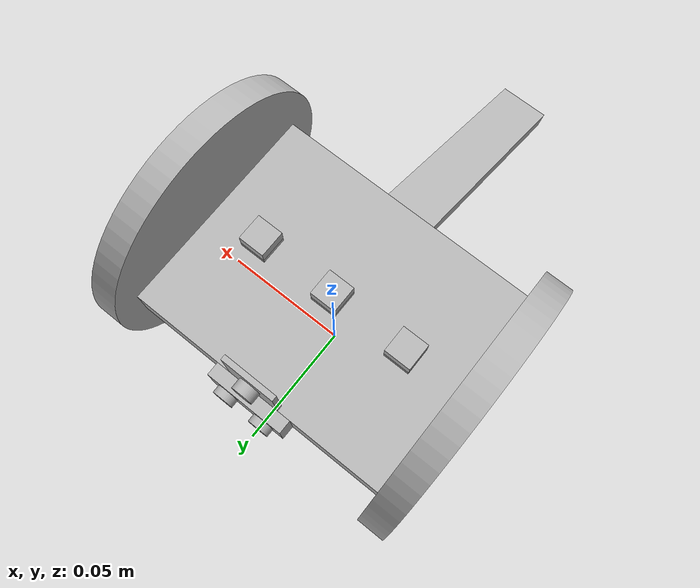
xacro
<?xml version="1.0" ?>
<robot name="cansat" xmlns:xacro="http://www.ros.org/wiki/xacro">

<xacro:include filename="$(find cansat_description)/urdf/materials.xacro" />
<xacro:include filename="$(find cansat_description)/urdf/cansat.trans" />
<xacro:include filename="$(find cansat_description)/urdf/cansat.gazebo" />
<link name="base_link">
  <inertial>
    <origin xyz="0.0 -3.2286327365022175e-08 0.05004228635760257" rpy="0 0 0"/>
    <mass value="0.9467113842824633"/>
    <inertia ixx="0.00052" iyy="0.000806" izz="0.00129" ixy="-0.0" iyz="-0.0" ixz="0.0"/>
  </inertial>
  <visual>
    <origin xyz="0 0 0" rpy="0 0 0"/>
    <geometry>
      <mesh filename="file://$(find cansat_description)/meshes/base_link.stl" scale="0.001 0.001 0.001"/>
    </geometry>
    <material name="silver"/>
  </visual>
  <collision>
    <origin xyz="0 0 0" rpy="0 0 0"/>
    <geometry>
      <mesh filename="file://$(find cansat_description)/meshes/base_link.stl" scale="0.001 0.001 0.001"/>
    </geometry>
  </collision>
</link>

<link name="wheel_right_1">
  <inertial>
    <origin xyz="0.0049999999999999975 -7.237528875152536e-18 -1.3877787807814457e-17" rpy="0 0 0"/>
    <mass value="0.6165375582669969"/>
    <inertia ixx="0.000771" iyy="0.00039" izz="0.00039" ixy="-0.0" iyz="-0.0" ixz="-0.0"/>
  </inertial>
  <visual>
    <origin xyz="-0.05 -0.0 -0.05" rpy="0 0 0"/>
    <geometry>
      <mesh filename="file://$(find cansat_description)/meshes/wheel_right_1.stl" scale="0.001 0.001 0.001"/>
    </geometry>
    <material name="silver"/>
  </visual>
  <collision>
    <origin xyz="-0.05 -0.0 -0.05" rpy="0 0 0"/>
    <geometry>
      <mesh filename="file://$(find cansat_description)/meshes/wheel_right_1.stl" scale="0.001 0.001 0.001"/>
    </geometry>
  </collision>
</link>

<link name="wheel_left_1">
  <inertial>
    <origin xyz="-0.0049999999999999975 -7.237528875152536e-18 -1.3877787807814457e-17" rpy="0 0 0"/>
    <mass value="0.6165375582669969"/>
    <inertia ixx="0.000771" iyy="0.00039" izz="0.00039" ixy="0.0" iyz="-0.0" ixz="0.0"/>
  </inertial>
  <visual>
    <origin xyz="0.05 -0.0 -0.05" rpy="0 0 0"/>
    <geometry>
      <mesh filename="file://$(find cansat_description)/meshes/wheel_left_1.stl" scale="0.001 0.001 0.001"/>
    </geometry>
    <material name="silver"/>
  </visual>
  <collision>
    <origin xyz="0.05 -0.0 -0.05" rpy="0 0 0"/>
    <geometry>
      <mesh filename="file://$(find cansat_description)/meshes/wheel_left_1.stl" scale="0.001 0.001 0.001"/>
    </geometry>
  </collision>
</link>

<link name="pressure_1">
  <inertial>
    <origin xyz="0.0 0.0 0.0025000000000000022" rpy="0 0 0"/>
    <mass value="0.003925"/>
    <inertia ixx="0.0" iyy="0.0" izz="0.0" ixy="0.0" iyz="0.0" ixz="0.0"/>
  </inertial>
  <visual>
    <origin xyz="0.03 -0.0 -0.0595" rpy="0 0 0"/>
    <geometry>
      <mesh filename="file://$(find cansat_description)/meshes/pressure_1.stl" scale="0.001 0.001 0.001"/>
    </geometry>
    <material name="silver"/>
  </visual>
  <collision>
    <origin xyz="0.03 -0.0 -0.0595" rpy="0 0 0"/>
    <geometry>
      <mesh filename="file://$(find cansat_description)/meshes/pressure_1.stl" scale="0.001 0.001 0.001"/>
    </geometry>
  </collision>
</link>

<link name="GPS_1">
  <inertial>
    <origin xyz="0.0 0.0 0.0025000000000000022" rpy="0 0 0"/>
    <mass value="0.003925"/>
    <inertia ixx="0.0" iyy="0.0" izz="0.0" ixy="0.0" iyz="0.0" ixz="0.0"/>
  </inertial>
  <visual>
    <origin xyz="-0.0 -0.0 -0.0595" rpy="0 0 0"/>
    <geometry>
      <mesh filename="file://$(find cansat_description)/meshes/GPS_1.stl" scale="0.001 0.001 0.001"/>
    </geometry>
    <material name="silver"/>
  </visual>
  <collision>
    <origin xyz="-0.0 -0.0 -0.0595" rpy="0 0 0"/>
    <geometry>
      <mesh filename="file://$(find cansat_description)/meshes/GPS_1.stl" scale="0.001 0.001 0.001"/>
    </geometry>
  </collision>
</link>

<link name="IMU_1">
  <inertial>
    <origin xyz="0.0 0.0 0.0025000000000000022" rpy="0 0 0"/>
    <mass value="0.003925"/>
    <inertia ixx="0.0" iyy="0.0" izz="0.0" ixy="0.0" iyz="0.0" ixz="-0.0"/>
  </inertial>
  <visual>
    <origin xyz="-0.03 -0.0 -0.0595" rpy="0 0 0"/>
    <geometry>
      <mesh filename="file://$(find cansat_description)/meshes/IMU_1.stl" scale="0.001 0.001 0.001"/>
    </geometry>
    <material name="silver"/>
  </visual>
  <collision>
    <origin xyz="-0.03 -0.0 -0.0595" rpy="0 0 0"/>
    <geometry>
      <mesh filename="file://$(find cansat_description)/meshes/IMU_1.stl" scale="0.001 0.001 0.001"/>
    </geometry>
  </collision>
</link>

<link name="camera_1">
  <inertial>
    <origin xyz="-8.401572995760484e-14 0.0006025459279945244 0.009999999999999995" rpy="0 0 0"/>
    <mass value="0.007858336149163586"/>
    <inertia ixx="0.0" iyy="0.0" izz="0.0" ixy="0.0" iyz="0.0" ixz="0.0"/>
  </inertial>
  <visual>
    <origin xyz="0.0 -0.039 -0.057501" rpy="0 0 0"/>
    <geometry>
      <mesh filename="file://$(find cansat_description)/meshes/camera_1.stl" scale="0.001 0.001 0.001"/>
    </geometry>
    <material name="silver"/>
  </visual>
  <collision>
    <origin xyz="0.0 -0.039 -0.057501" rpy="0 0 0"/>
    <geometry>
      <mesh filename="file://$(find cansat_description)/meshes/camera_1.stl" scale="0.001 0.001 0.001"/>
    </geometry>
  </collision>
</link>

<link name="ultrasound_1">
  <inertial>
    <origin xyz="-4.943717327231973e-14 0.002972791557565156 4.999999999935612e-07" rpy="0 0 0"/>
    <mass value="0.020030004223745363"/>
    <inertia ixx="0.0" iyy="2e-06" izz="2e-06" ixy="0.0" iyz="0.0" ixz="0.0"/>
  </inertial>
  <visual>
    <origin xyz="-0.0 -0.04 -0.05" rpy="0 0 0"/>
    <geometry>
      <mesh filename="file://$(find cansat_description)/meshes/ultrasound_1.stl" scale="0.001 0.001 0.001"/>
    </geometry>
    <material name="silver"/>
  </visual>
  <collision>
    <origin xyz="-0.0 -0.04 -0.05" rpy="0 0 0"/>
    <geometry>
      <mesh filename="file://$(find cansat_description)/meshes/ultrasound_1.stl" scale="0.001 0.001 0.001"/>
    </geometry>
  </collision>
</link>

<link name="tail_1">
  <inertial>
    <origin xyz="0.0 -0.04319351018119617 -0.021567352048070105" rpy="0 0 0"/>
    <mass value="0.09245084051642186"/>
    <inertia ixx="7.2e-05" iyy="1.8e-05" izz="6.1e-05" ixy="0.0" iyz="-2.9e-05" ixz="0.0"/>
  </inertial>
  <visual>
    <origin xyz="-0.0 0.040001 -0.045909" rpy="0 0 0"/>
    <geometry>
      <mesh filename="file://$(find cansat_description)/meshes/tail_1.stl" scale="0.001 0.001 0.001"/>
    </geometry>
    <material name="silver"/>
  </visual>
  <collision>
    <origin xyz="-0.0 0.040001 -0.045909" rpy="0 0 0"/>
    <geometry>
      <mesh filename="file://$(find cansat_description)/meshes/tail_1.stl" scale="0.001 0.001 0.001"/>
    </geometry>
  </collision>
</link>

<joint name="wheel_left_joint" type="continuous">
  <origin xyz="0.05 0.0 0.05" rpy="0 0 0"/>
  <parent link="base_link"/>
  <child link="wheel_right_1"/>
  <axis xyz="1.0 0.0 0.0"/>
</joint>

<joint name="wheel_right_joint" type="continuous">
  <origin xyz="-0.05 0.0 0.05" rpy="0 0 0"/>
  <parent link="base_link"/>
  <child link="wheel_left_1"/>
  <axis xyz="-1.0 0.0 0.0"/>
</joint>

<joint name="static_pressure" type="fixed">
  <origin xyz="-0.03 0.0 0.0595" rpy="0 0 0"/>
  <parent link="base_link"/>
  <child link="pressure_1"/>
</joint>

<joint name="static_gps" type="fixed">
  <origin xyz="0.0 0.0 0.0595" rpy="0 0 0"/>
  <parent link="base_link"/>
  <child link="GPS_1"/>
</joint>

<joint name="static_IMU" type="fixed">
  <origin xyz="0.03 0.0 0.0595" rpy="0 0 0"/>
  <parent link="base_link"/>
  <child link="IMU_1"/>
</joint>

<joint name="static_camera" type="fixed">
  <origin xyz="0.0 0.039 0.057501" rpy="0 0 0"/>
  <parent link="base_link"/>
  <child link="camera_1"/>
</joint>

<joint name="static_ulrasound" type="fixed">
  <origin xyz="0.0 0.04 0.05" rpy="0 0 0"/>
  <parent link="base_link"/>
  <child link="ultrasound_1"/>
</joint>

<joint name="static_tail" type="fixed">
  <origin xyz="0.0 -0.040001 0.045909" rpy="0 0 0"/>
  <parent link="base_link"/>
  <child link="tail_1"/>
</joint>

</robot>

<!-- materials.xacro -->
<robot name="cansat" xmlns:xacro="http://www.ros.org/wiki/xacro" >

<material name="silver">
  <color rgba="0.700 0.700 0.700 1.000"/>
</material>

</robot>

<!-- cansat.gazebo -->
<robot name="cansat" xmlns:xacro="http://www.ros.org/wiki/xacro" >

<xacro:property name="body_color" value="Gazebo/Silver" />

<gazebo>
  <plugin name="control" filename="libgazebo_ros_control.so"/>
</gazebo>
<gazebo reference="base_link">
  <material>${body_color}</material>
  <mu1>0.2</mu1>
  <mu2>0.2</mu2>
  <self_collide>true</self_collide>
  <gravity>true</gravity>
</gazebo>

<gazebo reference="wheel_right_1">
  <material>${body_color}</material>
  <mu1>0.2</mu1>
  <mu2>0.2</mu2>
  <self_collide>true</self_collide>
</gazebo>

<gazebo reference="wheel_left_1">
  <material>${body_color}</material>
  <mu1>0.2</mu1>
  <mu2>0.2</mu2>
  <self_collide>true</self_collide>
</gazebo>

<gazebo reference="pressure_1">
  <material>${body_color}</material>
  <mu1>0.2</mu1>
  <mu2>0.2</mu2>
  <self_collide>true</self_collide>
</gazebo>

<gazebo reference="GPS_1">
  <material>${body_color}</material>
  <mu1>0.2</mu1>
  <mu2>0.2</mu2>
  <self_collide>true</self_collide>
</gazebo>

<gazebo reference="IMU_1">
  <material>${body_color}</material>
  <mu1>0.2</mu1>
  <mu2>0.2</mu2>
  <self_collide>true</self_collide>
</gazebo>

<gazebo reference="camera_1">
  <material>${body_color}</material>
  <mu1>0.2</mu1>
  <mu2>0.2</mu2>
  <self_collide>true</self_collide>
</gazebo>

<gazebo reference="ultrasound_1">
  <material>${body_color}</material>
  <mu1>0.2</mu1>
  <mu2>0.2</mu2>
  <self_collide>true</self_collide>
</gazebo>

<gazebo reference="tail_1">
  <material>${body_color}</material>
  <mu1>0.2</mu1>
  <mu2>0.2</mu2>
  <self_collide>true</self_collide>
</gazebo>

</robot>
